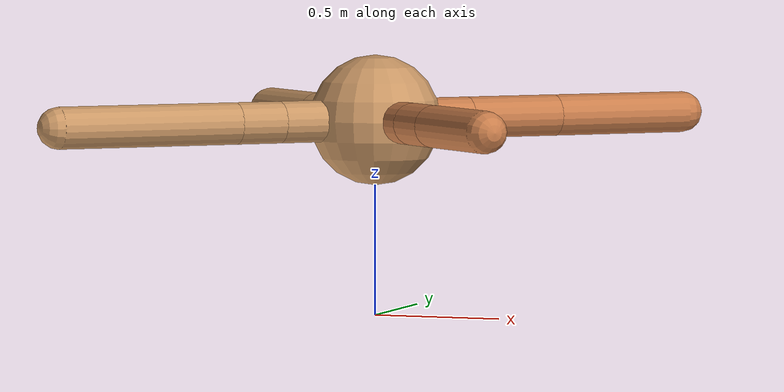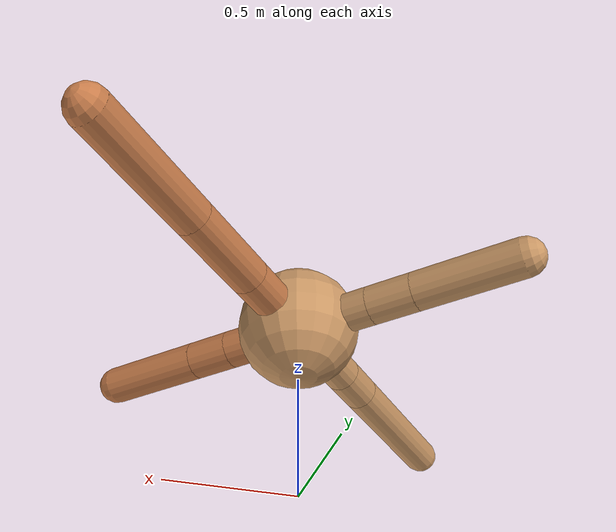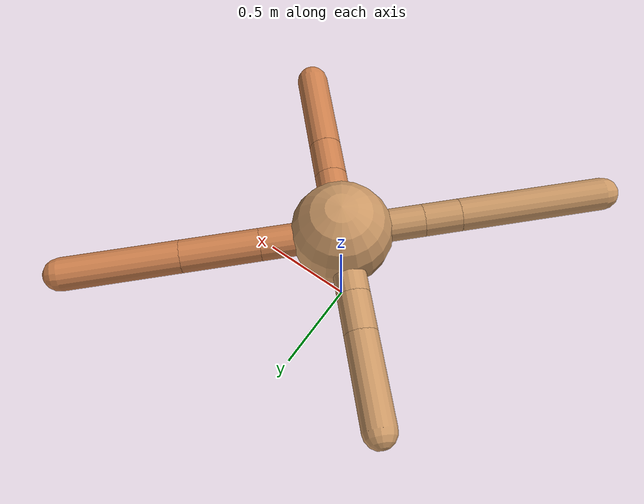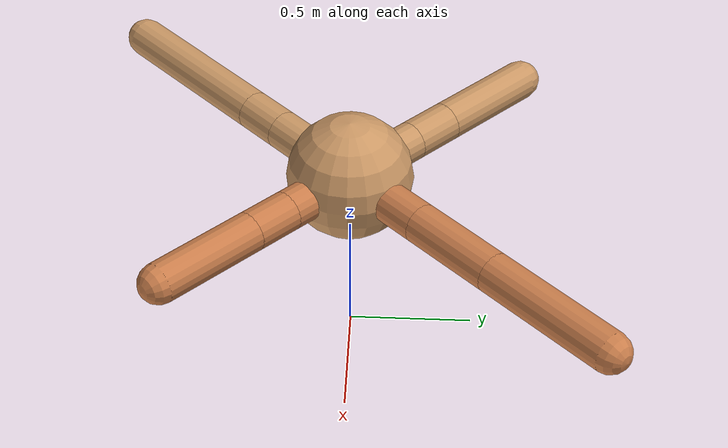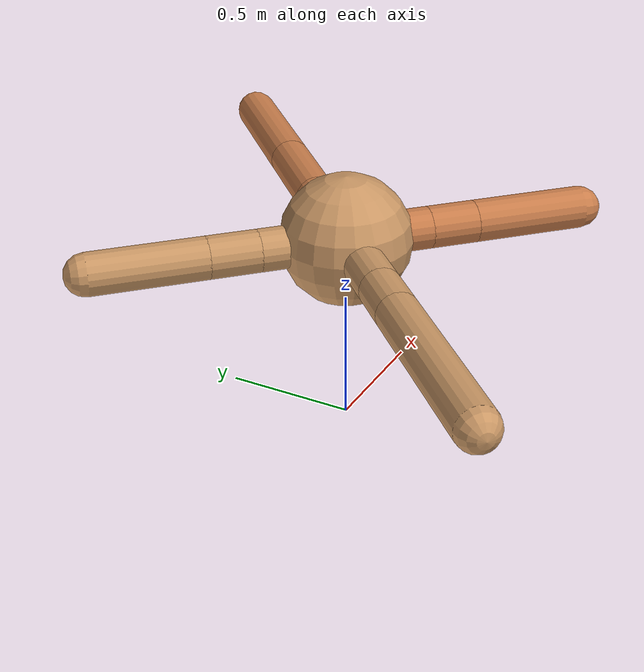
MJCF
<mujoco model="ant">
  <compiler angle="degree" coordinate="local" inertiafromgeom="true" />
  <option integrator="RK4" timestep="0.01" />
  <custom>
    <numeric data="0.0 0.0 0.55 1.0 0.0 0.0 0.0 0.0 1.0 0.0 -1.0 0.0 -1.0 0.0 1.0" name="init_qpos" />
  </custom>
  <default>
    <joint armature="1" damping="1" limited="true" />
    <geom conaffinity="0" condim="3" density="5.0" friction="1.5 0.1 0.1" margin="0.01" rgba="0.8 0.6 0.4 1" />
  </default>
  <worldbody>
    <body name="torso" pos="0 0 0.75">
      <geom name="torso_geom" pos="0 0 0" size="0.25" type="sphere" />

      <body name="front_left_leg" pos="0 0 0">
        <geom fromto="0.0 0.0 0.0 0.2790851102064199 0.2790851102064199 0.0" name="aux_1_geom" size="0.08" type="capsule" rgba=".8 .5 .3 1" />
        <body name="aux_1" pos="0.2790851102064199 0.2790851102064199 0.0">
          <joint axis="0 0 1" name="hip_1" pos="0.0 0.0 0.0" range="-40 40" type="hinge" />
          <geom fromto="0.0 0.0 0.0 0.26718020088829464 0.26718020088829464 0.0" name="left_leg_geom" size="0.08" type="capsule" rgba=".8 .5 .3 1" />
          <body pos="0.26718020088829464 0.26718020088829464 0.0" name="front_left_foot">
            <joint axis="-1 1 0" name="ankle_1" pos="0.0 0.0 0.0" range="30 100" type="hinge" />
            <geom fromto="0.0 0.0 0.0 0.3982786698150087 0.3982786698150087 0.0" name="left_ankle_geom" size="0.08" type="capsule" rgba=".8 .5 .3 1" />
          </body>
        </body>
      </body>
      <body name="front_right_leg" pos="0 0 0">
        <geom fromto="0.0 0.0 0.0 -0.23484004751962628 0.23484004751962628 0.0" name="aux_2_geom" size="0.08" type="capsule" />
        <body name="aux_2" pos="-0.23484004751962628 0.23484004751962628 0.0">
          <joint axis="0 0 1" name="hip_2" pos="0.0 0.0 0.0" range="-40 40" type="hinge" />
          <geom fromto="0.0 0.0 0.0 -0.13452378775206764 0.13452378775206764 0.0" name="right_leg_geom" size="0.08" type="capsule" />
          <body pos="-0.13452378775206764 0.13452378775206764 0.0" name="front_right_foot">
            <joint axis="1 1 0" name="ankle_2" pos="0.0 0.0 0.0" range="-100 -30" type="hinge" />
            <geom fromto="0.0 0.0 0.0 -0.3107080631209491 0.3107080631209491 0.0" name="right_ankle_geom" size="0.08" type="capsule" />
          </body>
        </body>
      </body>
      <body name="left_back_leg" pos="0 0 0">
        <geom fromto="0.0 0.0 0.0 -0.2837355151989895 -0.2837355151989895 0.0" name="aux_3_geom" size="0.08" type="capsule" />
        <body name="aux_3" pos="-0.2837355151989895 -0.2837355151989895 0.0">
          <joint axis="0 0 1" name="hip_3" pos="0.0 0.0 0.0" range="-40 40" type="hinge" />
          <geom fromto="0.0 0.0 0.0 -0.12873887775452042 -0.12873887775452042 0.0" name="back_leg_geom" size="0.08" type="capsule" />
          <body pos="-0.12873887775452042 -0.12873887775452042 0.0" name="left_back_foot">
            <joint axis="-1 1 0" name="ankle_3" pos="0.0 0.0 0.0" range="-100 -30" type="hinge" />
            <geom fromto="0.0 0.0 0.0 -0.5135309107315337 -0.5135309107315337 0.0" name="third_ankle_geom" size="0.08" type="capsule" />
          </body>
        </body>
      </body>
      <body name="right_back_leg" pos="0 0 0">
        <geom fromto="0.0 0.0 0.0 0.22798831963904204 -0.22798831963904204 0.0" name="aux_4_geom" size="0.08" type="capsule" rgba=".8 .5 .3 1" />
        <body name="aux_4" pos="0.22798831963904204 -0.22798831963904204 0.0">
          <joint axis="0 0 1" name="hip_4" pos="0.0 0.0 0.0" range="-40 40" type="hinge" />
          <geom fromto="0.0 0.0 0.0 0.12865492074671406 -0.12865492074671406 0.0" name="rightback_leg_geom" size="0.08" type="capsule" rgba=".8 .5 .3 1" />
          <body pos="0.12865492074671406 -0.12865492074671406 0.0" name="right_back_foot">
            <joint axis="1 1 0" name="ankle_4" pos="0.0 0.0 0.0" range="30 100" type="hinge" />
            <geom fromto="0.0 0.0 0.0 0.30565127330003494 -0.30565127330003494 0.0" name="fourth_ankle_geom" size="0.08" type="capsule" rgba=".8 .5 .3 1" />
          </body>
        </body>
      </body>
    </body>
  </worldbody>
  <actuator>
    <motor ctrllimited="true" ctrlrange="-1.0 1.0" joint="hip_4" gear="150" />
    <motor ctrllimited="true" ctrlrange="-1.0 1.0" joint="ankle_4" gear="150" />
    <motor ctrllimited="true" ctrlrange="-1.0 1.0" joint="hip_1" gear="150" />
    <motor ctrllimited="true" ctrlrange="-1.0 1.0" joint="ankle_1" gear="150" />
    <motor ctrllimited="true" ctrlrange="-1.0 1.0" joint="hip_2" gear="150" />
    <motor ctrllimited="true" ctrlrange="-1.0 1.0" joint="ankle_2" gear="150" />
    <motor ctrllimited="true" ctrlrange="-1.0 1.0" joint="hip_3" gear="150" />
    <motor ctrllimited="true" ctrlrange="-1.0 1.0" joint="ankle_3" gear="150" />
  </actuator>
</mujoco>
